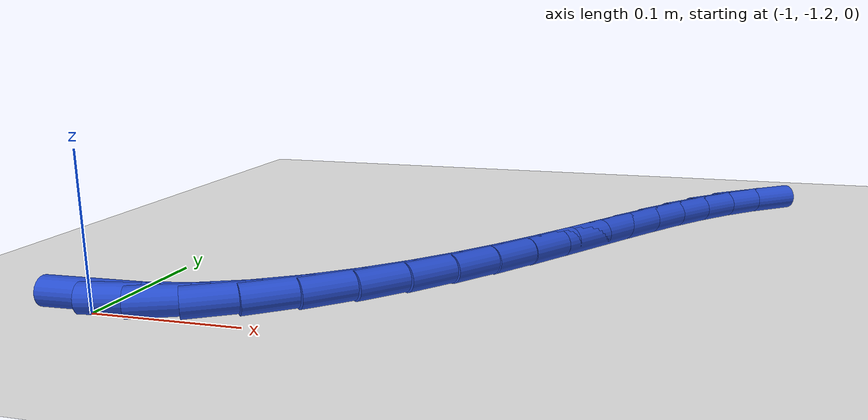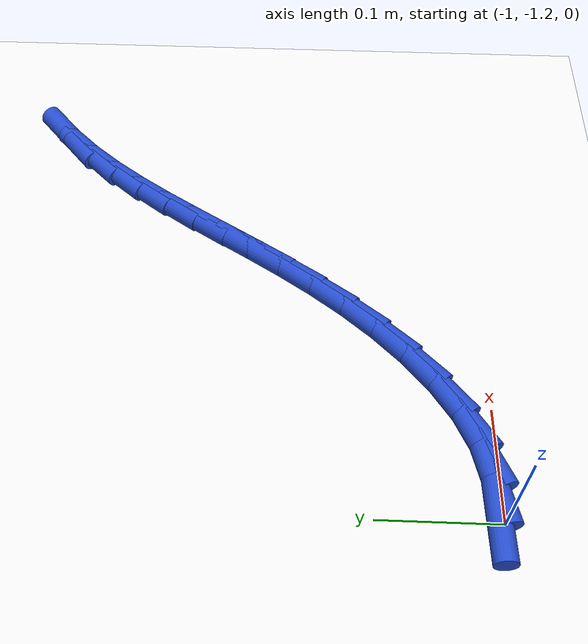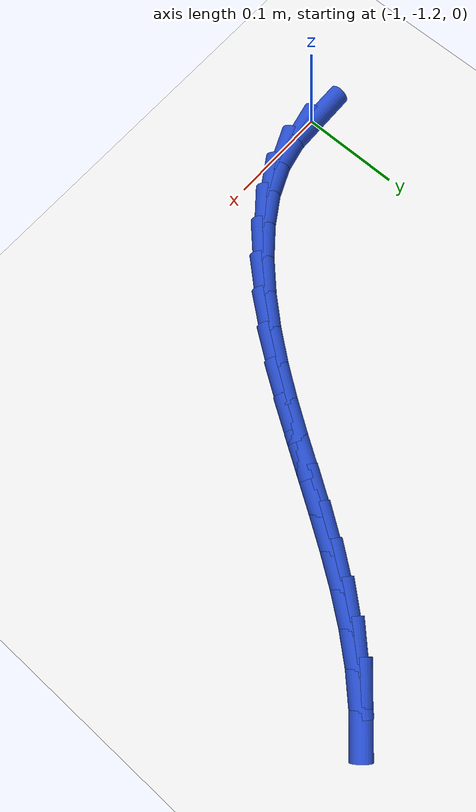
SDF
<sdf version="1.6">
 <world name="default">
  <model name="ground_plane">
   <static>1</static>
   <link name="link">
    <collision name="collision">
     <geometry><plane><normal>0 0 1</normal><size>100 100</size></plane></geometry>
     <surface><friction><ode><mu>100</mu><mu2>50</mu2></ode></friction></surface>
    </collision>
    <visual name="visual">
     <cast_shadows>0</cast_shadows>
     <geometry><plane><normal>0 0 1</normal><size>100 100</size></plane></geometry>
     <material>
      <script><uri>file://media/materials/scripts/gazebo.material</uri><name>Gazebo/WhiteGlow</name></script>
     </material>
    </visual>
   </link>
  </model>
  <model name="line">
   <link name="link_160">
    <pose>-0.9963101216764693 -1.193821630558933 0.01 0 1.57 0.02736862342289928</pose>
    <collision name="collision">
     <geometry><cylinder><radius>0.01</radius><length>0.08</length></cylinder></geometry>
    </collision>
    <visual name="visual">
     <material>
      <script><name>Gazebo/Blue</name><uri>file://media/materials/scripts/gazebo.material</uri></script>
     </material>
     <geometry><cylinder><radius>0.01</radius><length>0.08</length></cylinder></geometry>
    </visual>
   </link>
   <link name="link_161">
    <pose>-0.9669245362466456 -1.1930171866732477 0.01 0 1.57 0.22446423685957947</pose>
    <collision name="collision">
     <geometry><cylinder><radius>0.01</radius><length>0.08</length></cylinder></geometry>
    </collision>
    <visual name="visual">
     <material>
      <script><name>Gazebo/Blue</name><uri>file://media/materials/scripts/gazebo.material</uri></script>
     </material>
     <geometry><cylinder><radius>0.01</radius><length>0.08</length></cylinder></geometry>
    </visual>
   </link>
   <link name="link_162">
    <pose>-0.937822101731267 -1.186372762971955 0.01 0 1.57 0.4195636672498469</pose>
    <collision name="collision">
     <geometry><cylinder><radius>0.01</radius><length>0.08</length></cylinder></geometry>
    </collision>
    <visual name="visual">
     <material>
      <script><name>Gazebo/Blue</name><uri>file://media/materials/scripts/gazebo.material</uri></script>
     </material>
     <geometry><cylinder><radius>0.01</radius><length>0.08</length></cylinder></geometry>
    </visual>
   </link>
   <link name="link_163">
    <pose>-0.9091003940765451 -1.1735614654090747 0.01 0 1.57 0.572735569357934</pose>
    <collision name="collision">
     <geometry><cylinder><radius>0.01</radius><length>0.08</length></cylinder></geometry>
    </collision>
    <visual name="visual">
     <material>
      <script><name>Gazebo/Blue</name><uri>file://media/materials/scripts/gazebo.material</uri></script>
     </material>
     <geometry><cylinder><radius>0.01</radius><length>0.08</length></cylinder></geometry>
    </visual>
   </link>
   <link name="link_164">
    <pose>-0.8811437351324903 -1.1555340390253122 0.01 0 1.57 0.688300487655911</pose>
    <collision name="collision">
     <geometry><cylinder><radius>0.01</radius><length>0.08</length></cylinder></geometry>
    </collision>
    <visual name="visual">
     <material>
      <script><name>Gazebo/Blue</name><uri>file://media/materials/scripts/gazebo.material</uri></script>
     </material>
     <geometry><cylinder><radius>0.01</radius><length>0.08</length></cylinder></geometry>
    </visual>
   </link>
   <link name="link_165">
    <pose>-0.8544036810462377 -1.1335408012870993 0.01 0 1.57 0.7781030558152596</pose>
    <collision name="collision">
     <geometry><cylinder><radius>0.01</radius><length>0.08</length></cylinder></geometry>
    </collision>
    <visual name="visual">
     <material>
      <script><name>Gazebo/Blue</name><uri>file://media/materials/scripts/gazebo.material</uri></script>
     </material>
     <geometry><cylinder><radius>0.01</radius><length>0.08</length></cylinder></geometry>
    </visual>
   </link>
   <link name="link_166">
    <pose>-0.8293317879649195 -1.1088320696608682 0.01 0 1.57 0.8508297422764293</pose>
    <collision name="collision">
     <geometry><cylinder><radius>0.01</radius><length>0.08</length></cylinder></geometry>
    </collision>
    <visual name="visual">
     <material>
      <script><name>Gazebo/Blue</name><uri>file://media/materials/scripts/gazebo.material</uri></script>
     </material>
     <geometry><cylinder><radius>0.01</radius><length>0.08</length></cylinder></geometry>
    </visual>
   </link>
   <link name="link_167">
    <pose>-0.8062769186143796 -1.0825439983879994 0.01 0 1.57 0.9103702133877358</pose>
    <collision name="collision">
     <geometry><cylinder><radius>0.01</radius><length>0.08</length></cylinder></geometry>
    </collision>
    <visual name="visual">
     <material>
      <script><name>Gazebo/Blue</name><uri>file://media/materials/scripts/gazebo.material</uri></script>
     </material>
     <geometry><cylinder><radius>0.01</radius><length>0.08</length></cylinder></geometry>
    </visual>
   </link>
   <link name="link_168">
    <pose>-0.7850343796130067 -1.0551973590526382 0.01 0 1.57 0.9563295269822909</pose>
    <collision name="collision">
     <geometry><cylinder><radius>0.01</radius><length>0.08</length></cylinder></geometry>
    </collision>
    <visual name="visual">
     <material>
      <script><name>Gazebo/Blue</name><uri>file://media/materials/scripts/gazebo.material</uri></script>
     </material>
     <geometry><cylinder><radius>0.01</radius><length>0.08</length></cylinder></geometry>
    </visual>
   </link>
   <link name="link_169">
    <pose>-0.7652137887696496 -1.027106494890484 0.01 0 1.57 0.9882695980071725</pose>
    <collision name="collision">
     <geometry><cylinder><radius>0.01</radius><length>0.08</length></cylinder></geometry>
    </collision>
    <visual name="visual">
     <material>
      <script><name>Gazebo/Blue</name><uri>file://media/materials/scripts/gazebo.material</uri></script>
     </material>
     <geometry><cylinder><radius>0.01</radius><length>0.08</length></cylinder></geometry>
    </visual>
   </link>
   <link name="link_170">
    <pose>-0.7464246281982703 -0.9985855982866203 0.01 0 1.57 1.0059366735182462</pose>
    <collision name="collision">
     <geometry><cylinder><radius>0.01</radius><length>0.08</length></cylinder></geometry>
    </collision>
    <visual name="visual">
     <material>
      <script><name>Gazebo/Blue</name><uri>file://media/materials/scripts/gazebo.material</uri></script>
     </material>
     <geometry><cylinder><radius>0.01</radius><length>0.08</length></cylinder></geometry>
    </visual>
   </link>
   <link name="link_171">
    <pose>-0.7282763800128319 -0.9699488616261324 0.01 0 1.57 1.0090710933824067</pose>
    <collision name="collision">
     <geometry><cylinder><radius>0.01</radius><length>0.08</length></cylinder></geometry>
    </collision>
    <visual name="visual">
     <material>
      <script><name>Gazebo/Blue</name><uri>file://media/materials/scripts/gazebo.material</uri></script>
     </material>
     <geometry><cylinder><radius>0.01</radius><length>0.08</length></cylinder></geometry>
    </visual>
   </link>
   <link name="link_172">
    <pose>-0.7103785263272966 -0.9415104772941036 0.01 0 1.57 0.9972916449555125</pose>
    <collision name="collision">
     <geometry><cylinder><radius>0.01</radius><length>0.08</length></cylinder></geometry>
    </collision>
    <visual name="visual">
     <material>
      <script><name>Gazebo/Blue</name><uri>file://media/materials/scripts/gazebo.material</uri></script>
     </material>
     <geometry><cylinder><radius>0.01</radius><length>0.08</length></cylinder></geometry>
    </visual>
   </link>
   <link name="link_173">
    <pose>-0.692340549255627 -0.9135846376756187 0.01 0 1.57 0.9700645944954578</pose>
    <collision name="collision">
     <geometry><cylinder><radius>0.01</radius><length>0.08</length></cylinder></geometry>
    </collision>
    <visual name="visual">
     <material>
      <script><name>Gazebo/Blue</name><uri>file://media/materials/scripts/gazebo.material</uri></script>
     </material>
     <geometry><cylinder><radius>0.01</radius><length>0.08</length></cylinder></geometry>
    </visual>
   </link>
   <link name="link_174">
    <pose>-0.6737719309117854 -0.886485535155761 0.01 0 1.57 0.9267740236894153</pose>
    <collision name="collision">
     <geometry><cylinder><radius>0.01</radius><length>0.08</length></cylinder></geometry>
    </collision>
    <visual name="visual">
     <material>
      <script><name>Gazebo/Blue</name><uri>file://media/materials/scripts/gazebo.material</uri></script>
     </material>
     <geometry><cylinder><radius>0.01</radius><length>0.08</length></cylinder></geometry>
    </visual>
   </link>
   <link name="link_175">
    <pose>-0.6542821534097344 -0.8605273621196148 0.01 0 1.57 0.8669218994870462</pose>
    <collision name="collision">
     <geometry><cylinder><radius>0.01</radius><length>0.08</length></cylinder></geometry>
    </collision>
    <visual name="visual">
     <material>
      <script><name>Gazebo/Blue</name><uri>file://media/materials/scripts/gazebo.material</uri></script>
     </material>
     <geometry><cylinder><radius>0.01</radius><length>0.08</length></cylinder></geometry>
    </visual>
   </link>
   <link name="link_176">
    <pose>-0.6334806988634359 -0.8360243109522637 0.01 0 1.57 0.7904843425776508</pose>
    <collision name="collision">
     <geometry><cylinder><radius>0.01</radius><length>0.08</length></cylinder></geometry>
    </collision>
    <visual name="visual">
     <material>
      <script><name>Gazebo/Blue</name><uri>file://media/materials/scripts/gazebo.material</uri></script>
     </material>
     <geometry><cylinder><radius>0.01</radius><length>0.08</length></cylinder></geometry>
    </visual>
   </link>
   <link name="link_177">
    <pose>-0.6109770493868537 -0.8132905740387935 0.01 0 1.57 0.7003170462722413</pose>
    <collision name="collision">
     <geometry><cylinder><radius>0.01</radius><length>0.08</length></cylinder></geometry>
    </collision>
    <visual name="visual">
     <material>
      <script><name>Gazebo/Blue</name><uri>file://media/materials/scripts/gazebo.material</uri></script>
     </material>
     <geometry><cylinder><radius>0.01</radius><length>0.08</length></cylinder></geometry>
    </visual>
   </link>
  </model>
 </world>
</sdf>
